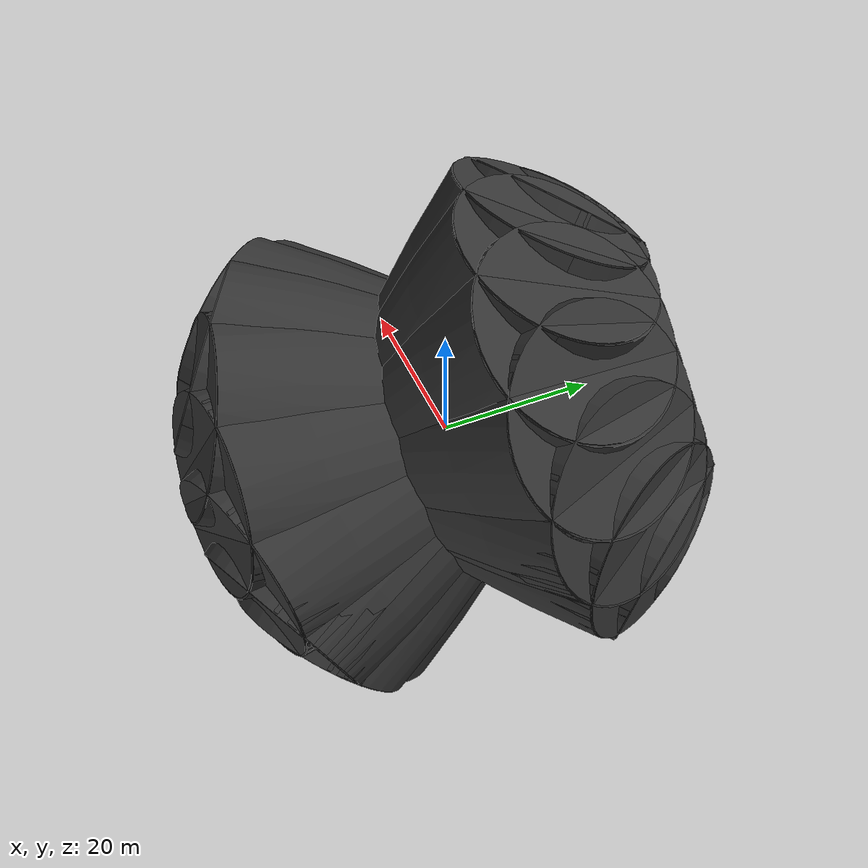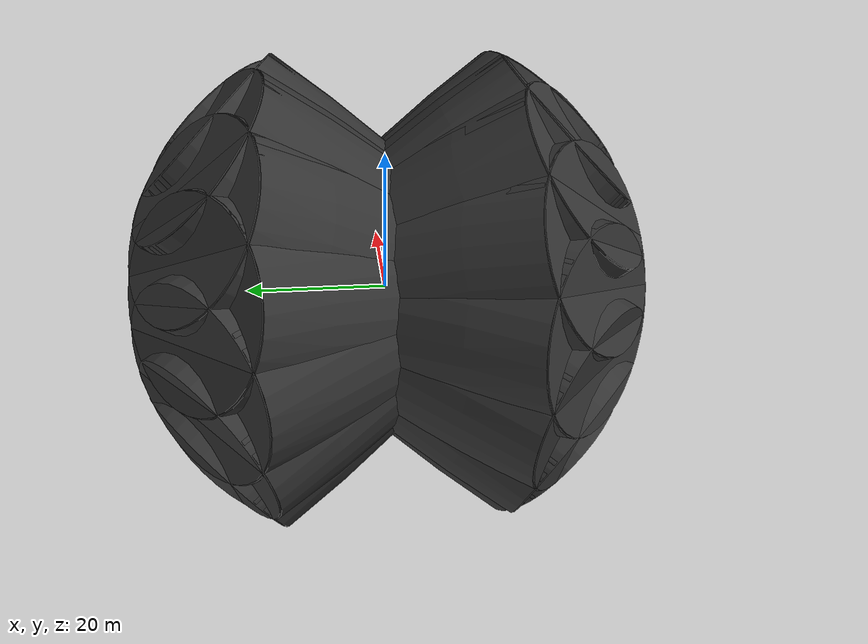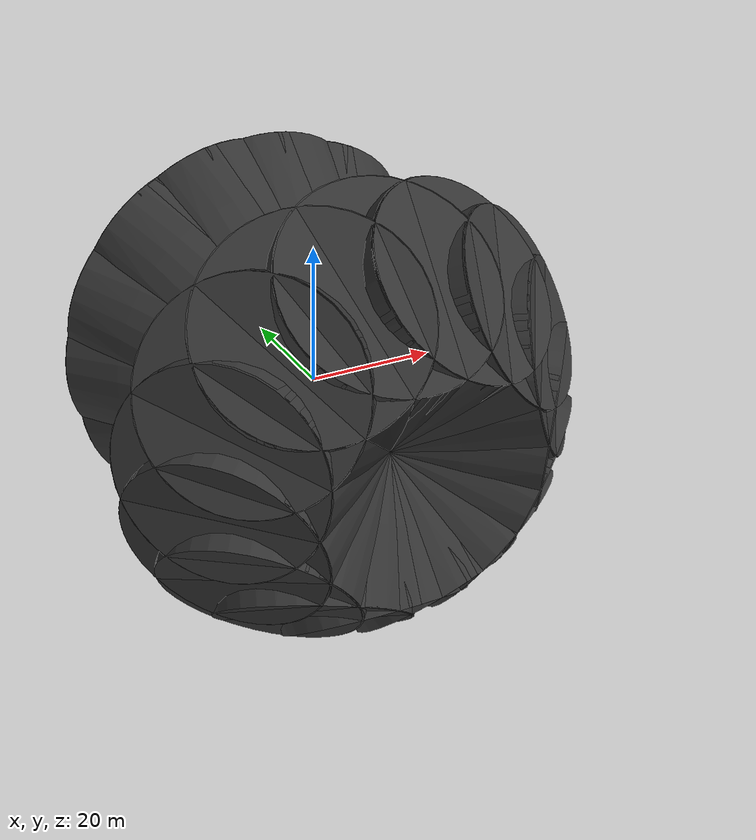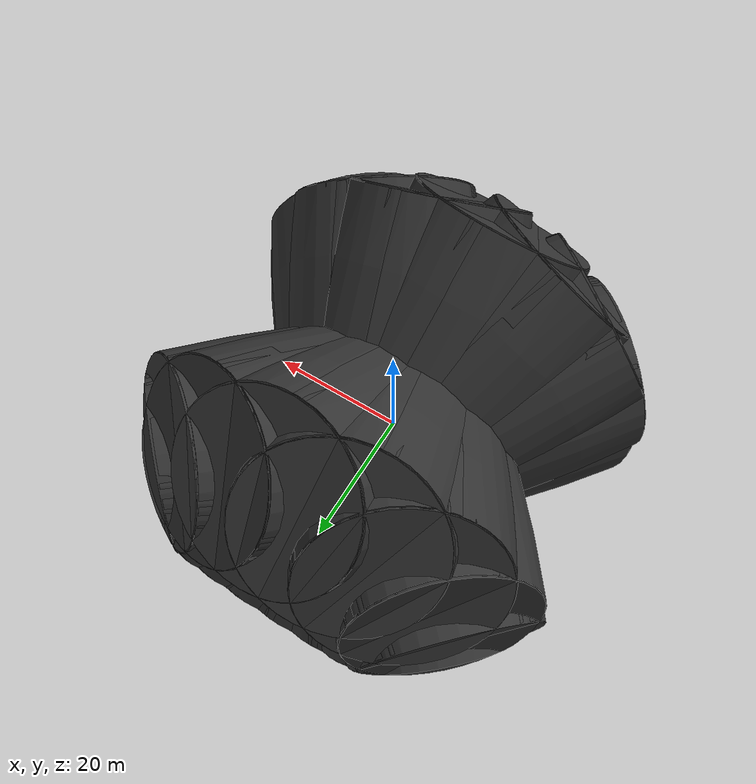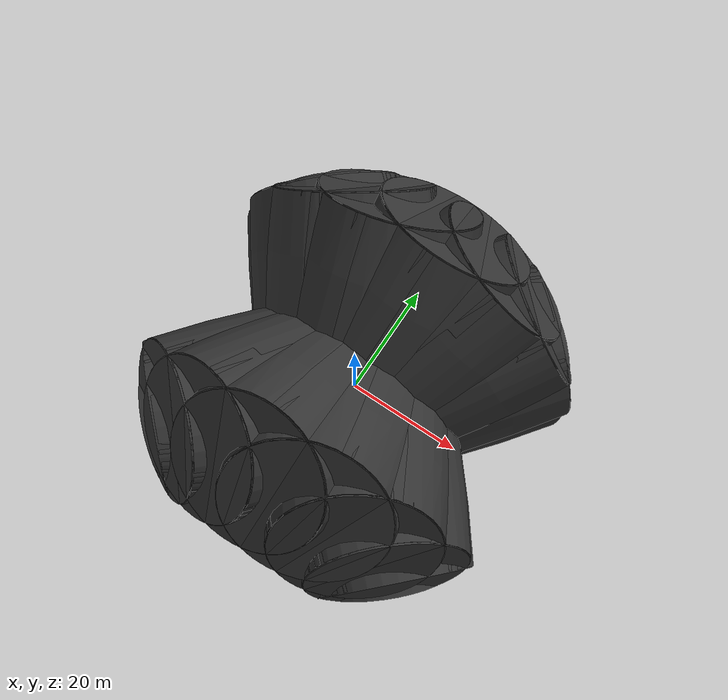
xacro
<?xml version="1.0" ?>
<robot name="amir_mecanum3" xmlns:xacro="http://www.ros.org/wiki/xacro">

  <!-- メカナムローバー URDF
       mecanum3.gazebo (gz_ros2_control-system) と
       mecanum3_ros2_control.xacro (MecanumSystem) を含む -->
  <xacro:include filename="$(find mecanumrover_description)/urdf/mecanum3.xacro"/>

  <!-- AMIR アーム リンク/ジョイント -->
  <xacro:include filename="$(find amir_description)/urdf/amir_for_rover.xacro"/>

  <!-- ローバーとアームの固定接続 -->
  <joint name="base_fixed" type="fixed">
    <origin xyz="0.0 0.0 0.413" rpy="0 0 0"/>
    <parent link="base_link"/>
    <child link="link0_1"/>
  </joint>

  <ros2_control name="AmirGazeboSystem" type="system">
    <hardware>
      <plugin>gz_ros2_control/GazeboSimSystem</plugin>
    </hardware>
    <joint name="Joint_1">
      <command_interface name="position">
        <param name="min">-2.96706</param>
        <param name="max">2.96706</param>
      </command_interface>
      <state_interface name="position">
        <param name="initial_value">0.0</param>
      </state_interface>
      <state_interface name="velocity"/>
    </joint>
    <joint name="Joint_2">
      <command_interface name="position">
        <param name="min">0.0</param>
        <param name="max">2.356194</param>
      </command_interface>
      <state_interface name="position">
        <param name="initial_value">0.0</param>
      </state_interface>
      <state_interface name="velocity"/>
    </joint>
    <joint name="Joint_3">
      <command_interface name="position">
        <param name="min">-2.792527</param>
        <param name="max">0.0</param>
      </command_interface>
      <state_interface name="position">
        <param name="initial_value">0.0</param>
      </state_interface>
      <state_interface name="velocity"/>
    </joint>
    <joint name="Joint_4">
      <command_interface name="position">
        <param name="min">-2.094395</param>
        <param name="max">1.308997</param>
      </command_interface>
      <state_interface name="position">
        <param name="initial_value">0.0</param>
      </state_interface>
      <state_interface name="velocity"/>
    </joint>
    <joint name="Joint_5">
      <command_interface name="position">
        <param name="min">-2.75762</param>
        <param name="max">2.75762</param>
      </command_interface>
      <state_interface name="position">
        <param name="initial_value">0.0</param>
      </state_interface>
      <state_interface name="velocity"/>
    </joint>
    <joint name="Gripper">
      <command_interface name="position">
        <param name="min">-1.047198</param>
        <param name="max">0.261799</param>
      </command_interface>
      <state_interface name="position">
        <param name="initial_value">0.0</param>
      </state_interface>
      <state_interface name="velocity"/>
    </joint>
    <joint name="left_inner_back_joint">
      <param name="mimic">Gripper</param>
      <param name="multiplier">1</param>
      <command_interface name="position"/>
      <state_interface name="position"/>
      <state_interface name="velocity"/>
    </joint>
    <joint name="right_outer_back_joint">
      <param name="mimic">Gripper</param>
      <param name="multiplier">1</param>
      <command_interface name="position"/>
      <state_interface name="position"/>
      <state_interface name="velocity"/>
    </joint>
    <joint name="left_outer_back_joint">
      <param name="mimic">Gripper</param>
      <param name="multiplier">1</param>
      <command_interface name="position"/>
      <state_interface name="position"/>
      <state_interface name="velocity"/>
    </joint>
    <joint name="right_inner_front_joint">
      <param name="mimic">Gripper</param>
      <param name="multiplier">1</param>
      <command_interface name="position"/>
      <state_interface name="position"/>
      <state_interface name="velocity"/>
    </joint>
    <joint name="left_inner_front_joint">
      <param name="mimic">Gripper</param>
      <param name="multiplier">1</param>
      <command_interface name="position"/>
      <state_interface name="position"/>
      <state_interface name="velocity"/>
    </joint>
  </ros2_control>

  <gazebo reference="link0_1"><collision><surface><friction><ode>
    <mu>1.4</mu><mu2>1.4</mu2>
  </ode></friction></surface></collision></gazebo>

  <gazebo reference="link1_1"><collision><surface><friction><ode>
    <mu>1.4</mu><mu2>1.4</mu2>
  </ode></friction></surface></collision></gazebo>

  <gazebo reference="link2_1"><collision><surface><friction><ode>
    <mu>1.4</mu><mu2>1.4</mu2>
  </ode></friction></surface></collision></gazebo>

  <gazebo reference="link3_1"><collision><surface><friction><ode>
    <mu>1.4</mu><mu2>1.4</mu2>
  </ode></friction></surface></collision></gazebo>

  <gazebo reference="link4_1"><collision><surface><friction><ode>
    <mu>1.4</mu><mu2>1.4</mu2>
  </ode></friction></surface></collision></gazebo>

  <gazebo reference="gripper_base_1"><collision><surface><friction><ode>
    <mu>1.4</mu><mu2>1.4</mu2>
  </ode></friction></surface></collision></gazebo>

  <gazebo reference="inner_link_left_1"><collision><surface><friction><ode>
    <mu>2.0</mu><mu2>2.0</mu2>
  </ode></friction></surface></collision></gazebo>

  <gazebo reference="inner_link_right_1"><collision><surface><friction><ode>
    <mu>2.0</mu><mu2>2.0</mu2>
  </ode></friction></surface></collision></gazebo>

  <gazebo reference="outer_link_left_1"><collision><surface><friction><ode>
    <mu>2.0</mu><mu2>2.0</mu2>
  </ode></friction></surface></collision></gazebo>

  <gazebo reference="outer_link_right_1"><collision><surface><friction><ode>
    <mu>2.0</mu><mu2>2.0</mu2>
  </ode></friction></surface></collision></gazebo>

  <!-- グリッパー指: 高摩擦 + 接触剛性 (把持面) -->
  <gazebo reference="finger_left_1">
    <collision>
      <surface>
        <friction>
          <ode>
            <mu>3.0</mu>
            <mu2>3.0</mu2>
          </ode>
        </friction>
        <contact>
          <ode>
            <kp>1e6</kp>
            <kd>1e3</kd>
            <max_vel>0.01</max_vel>
            <min_depth>0.001</min_depth>
          </ode>
        </contact>
      </surface>
    </collision>
  </gazebo>

  <gazebo reference="finger_right_1">
    <collision>
      <surface>
        <friction>
          <ode>
            <mu>3.0</mu>
            <mu2>3.0</mu2>
          </ode>
        </friction>
        <contact>
          <ode>
            <kp>1e6</kp>
            <kd>1e3</kd>
            <max_vel>0.01</max_vel>
            <min_depth>0.001</min_depth>
          </ode>
        </contact>
      </surface>
    </collision>
  </gazebo>

</robot>

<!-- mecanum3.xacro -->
<robot name="mecanum3" xmlns:xacro="http://www.ros.org/wiki/xacro">

  <xacro:include filename="$(find mecanumrover_description)/urdf/materials.xacro" />
  <xacro:include filename="$(find mecanumrover_description)/urdf/mecanum3.gazebo" />
  <xacro:include filename="$(find mecanumrover_description)/urdf/mecanum3_ros2_control.xacro" />

  <xacro:include filename="$(find vs_rover_options_description)/urdf/lrf/tg30_mecanum3.xacro" />

  <!-- Inertial macros -->
  <xacro:macro name="cylinder_inertial" params="mass radius length">
    <mass value="${mass}"/>
    <inertia
      ixx="${((radius*radius)/4 + (length*length)/12)*mass}"
      ixy="0" ixz="0"
      iyy="${((radius*radius)/4 + (length*length)/12)*mass}"
      iyz="0"
      izz="${(mass*radius*radius)/2}" />
  </xacro:macro>

  <!-- Barrel (roller) macros -->
  <xacro:macro name="barrel_rl" params="prefix parent dir rot">
    <joint name="${prefix}_joint" type="continuous">
      <parent link="${parent}"/>
      <child  link="${prefix}_link"/>
      <origin
        xyz="${0.0666389*cos(radians(dir))} ${0.0666389*sin(radians(dir))} 0"
        rpy="${pi/4*rot} 0 ${radians(dir)}"/>
      <axis xyz="0 0 1"/>
      <dynamics damping="0.001" friction="0.0"/>
    </joint>
    <link name="${prefix}_link">
      <visual>
        <geometry>
          <mesh filename="package://mecanumrover_description/meshes/mecanum3/mecanum_barrel.stl"/>
        </geometry>
        <material name="dark_grey"/>
      </visual>
      <collision>
        <geometry>
          <mesh filename="package://mecanumrover_description/meshes/mecanum3/mecanum_barrel.stl"/>
        </geometry>
      </collision>
      <inertial>
        <xacro:cylinder_inertial
          mass="0.01225"
          radius="0.00956"
          length="0.0381"/>
      </inertial>
    </link>
  </xacro:macro>

  <xacro:macro name="barrels_rl" params="prefix parent rot">
    <xacro:barrel_rl prefix="${prefix}_0"  parent="${parent}" dir="0"   rot="${rot}"/>
    <xacro:barrel_rl prefix="${prefix}_1"  parent="${parent}" dir="24"  rot="${rot}"/>
    <xacro:barrel_rl prefix="${prefix}_2"  parent="${parent}" dir="48"  rot="${rot}"/>
    <xacro:barrel_rl prefix="${prefix}_3"  parent="${parent}" dir="72"  rot="${rot}"/>
    <xacro:barrel_rl prefix="${prefix}_4"  parent="${parent}" dir="96"  rot="${rot}"/>
    <xacro:barrel_rl prefix="${prefix}_5"  parent="${parent}" dir="120" rot="${rot}"/>
    <xacro:barrel_rl prefix="${prefix}_6"  parent="${parent}" dir="144" rot="${rot}"/>
    <xacro:barrel_rl prefix="${prefix}_7"  parent="${parent}" dir="168" rot="${rot}"/>
    <xacro:barrel_rl prefix="${prefix}_8"  parent="${parent}" dir="192" rot="${rot}"/>
    <xacro:barrel_rl prefix="${prefix}_9"  parent="${parent}" dir="216" rot="${rot}"/>
    <xacro:barrel_rl prefix="${prefix}_10" parent="${parent}" dir="240" rot="${rot}"/>
    <xacro:barrel_rl prefix="${prefix}_11" parent="${parent}" dir="264" rot="${rot}"/>
    <xacro:barrel_rl prefix="${prefix}_12" parent="${parent}" dir="288" rot="${rot}"/>
    <xacro:barrel_rl prefix="${prefix}_13" parent="${parent}" dir="312" rot="${rot}"/>
    <xacro:barrel_rl prefix="${prefix}_14" parent="${parent}" dir="336" rot="${rot}"/>
  </xacro:macro>

  <xacro:macro name="attach_mecanum_rollers" params="wheel_prefix wheel_link rot">
    <xacro:barrels_rl
      prefix="${wheel_prefix}_barrel"
      parent="${wheel_link}"
      rot="${rot}"/>
  </xacro:macro>

  <!-- Arm link macro -->
  <xacro:macro name="mecanum_arm_link" params="name">
    <link name="${name}">
      <inertial>
        <origin xyz="0.001000 -0.054014 1.236051e-21"/>
        <mass value="0.5"/>
        <inertia ixx="7.442105e-04" iyy="2.141603e-04" izz="5.341336e-04" ixy="-4.944204e-21" ixz="1.236051e-21" iyz="1.089631e-04"/>
      </inertial>
      <visual>
        <geometry>
          <mesh filename="package://mecanumrover_description/meshes/mecanum3/arms.stl"
                scale="0.001 0.001 0.001"/>
        </geometry>
        <material name="silver"/>
      </visual>
      <collision>
        <geometry>
          <mesh filename="package://mecanumrover_description/meshes/mecanum3/arms.stl"
                scale="0.001 0.001 0.001"/>
        </geometry>
      </collision>
    </link>
  </xacro:macro>

  <!-- Wheel link macros
       Collision uses the actual STL mesh so barrel rollers are the outermost
       contact geometry (no separate cylinder approximation needed). -->
  <xacro:macro name="mecanum_wheel_link" params="name">
    <link name="${name}">
      <inertial>
        <origin xyz="0 0 0"/>
        <mass value="0.88"/>
        <inertia ixx="7.666816e-04" iyy="7.666974e-04" izz="8.946765e-04" ixy="2.614197e-11" ixz="1.015151e-09" iyz="-2.439097e-09"/>
      </inertial>
      <visual>
        <geometry>
          <mesh filename="package://mecanumrover_description/meshes/mecanum3/mecanum_wheel.stl"
                scale="0.001 0.001 0.001"/>
        </geometry>
        <material name="silver"/>
      </visual>
      <collision>
        <geometry>
          <mesh filename="package://mecanumrover_description/meshes/mecanum3/mecanum_wheel.stl"
                scale="0.001 0.001 0.001"/>
        </geometry>
      </collision>
    </link>
  </xacro:macro>

  <xacro:macro name="mecanum_wheel_rev_link" params="name">
    <link name="${name}">
      <inertial>
        <origin xyz="0.000657 0 0.007742"/>
        <mass value="0.88"/>
        <inertia ixx="7.655818e-04" iyy="7.655769e-04" izz="8.900386e-04" ixy="-6.106217e-09" ixz="1.064093e-09" iyz="-2.991811e-09"/>
      </inertial>
      <visual>
        <geometry>
          <mesh filename="package://mecanumrover_description/meshes/mecanum3/mecanum_wheel_rev.stl"
                scale="0.001 0.001 0.001"/>
        </geometry>
        <material name="silver"/>
      </visual>
      <collision>
        <geometry>
          <mesh filename="package://mecanumrover_description/meshes/mecanum3/mecanum_wheel_rev.stl"
                scale="0.001 0.001 0.001"/>
        </geometry>
      </collision>
    </link>
  </xacro:macro>

  <!-- Wheel joint macro -->
  <xacro:macro name="mecanum_wheel_joint" params="name parent child xyz rpy axis_z">
    <joint name="${name}" type="continuous">
      <parent link="${parent}"/>
      <child link="${child}"/>
      <origin xyz="${xyz}" rpy="${rpy}"/>
      <axis xyz="0 0 ${axis_z}"/>
      <limit effort="2500.0" velocity="20.0"/>
      <dynamics damping="0.1" friction="0.0"/>
    </joint>
  </xacro:macro>

  <!-- Base -->
  <link name="base_footprint"/>

  <joint name="base_joint" type="fixed">
    <parent link="base_footprint"/>
    <child link="base_link"/>
    <origin xyz="0 0 0" rpy="0 0 -1.5708"/>
  </joint>

  <link name="base_link">
    <inertial>
      <origin xyz="0.000129 -0.001817 0.110883"/>
      <mass value="20"/>
      <inertia ixx="1.346868e-01" iyy="4.468661e-02" izz="1.499091e-01" ixy="3.076527e-04" ixz="-2.931603e-05" iyz="2.763693e-05"/>
    </inertial>
    <visual>
      <geometry>
        <mesh filename="package://mecanumrover_description/meshes/mecanum3/base_link.stl"
              scale="0.001 0.001 0.001"/>
      </geometry>
      <material name="silver"/>
    </visual>
    <collision>
      <geometry>
        <mesh filename="package://mecanumrover_description/meshes/mecanum3/base_link.stl"
              scale="0.001 0.001 0.001"/>
      </geometry>
    </collision>
  </link>

  <!-- Arms -->
  <xacro:mecanum_arm_link name="front_left_arm"/>
  <xacro:mecanum_arm_link name="front_right_arm"/>
  <xacro:mecanum_arm_link name="back_left_arm"/>
  <xacro:mecanum_arm_link name="back_right_arm"/>

  <!-- Suspension joints (fixed: eliminates oscillation that caused tipping) -->
  <joint name="front_left_suspension_joint" type="fixed">
    <parent link="base_link"/>
    <child link="front_left_arm"/>
    <origin xyz="-0.085 0.020 0.076" rpy="0 0 ${radians(180)}"/>
  </joint>

  <joint name="front_right_suspension_joint" type="fixed">
    <parent link="base_link"/>
    <child link="front_right_arm"/>
    <origin xyz="0.085 0.020 0.076" rpy="0 0 ${radians(180)}"/>
  </joint>

  <joint name="back_left_suspension_joint" type="fixed">
    <parent link="base_link"/>
    <child link="back_left_arm"/>
    <origin xyz="-0.085 -0.020 0.076" rpy="0 0 0"/>
  </joint>

  <joint name="back_right_suspension_joint" type="fixed">
    <parent link="base_link"/>
    <child link="back_right_arm"/>
    <origin xyz="0.085 -0.020 0.076" rpy="0 0 0"/>
  </joint>

  <!-- Wheels -->
  <xacro:mecanum_wheel_rev_link name="front_left_wheel_1"/>
  <xacro:mecanum_wheel_link     name="front_right_wheel_1"/>
  <xacro:mecanum_wheel_link     name="back_left_wheel_1"/>
  <xacro:mecanum_wheel_rev_link name="back_right_wheel_1"/>

  <xacro:mecanum_wheel_joint
    name="front_left_joint"
    parent="front_left_arm"
    child="front_left_wheel_1"
    xyz="0.03 -0.100 0"
    rpy="0 ${radians(-270)} 0"
    axis_z="1"/>

  <xacro:mecanum_wheel_joint
    name="front_right_joint"
    parent="front_right_arm"
    child="front_right_wheel_1"
    xyz="-0.03 -0.100 0"
    rpy="0 ${radians(-90)} 0"
    axis_z="-1"/>

  <xacro:mecanum_wheel_joint
    name="back_left_joint"
    parent="back_left_arm"
    child="back_left_wheel_1"
    xyz="-0.03 -0.100 0"
    rpy="0 ${radians(270)} 0"
    axis_z="1"/>

  <xacro:mecanum_wheel_joint
    name="back_right_joint"
    parent="back_right_arm"
    child="back_right_wheel_1"
    xyz="0.03 -0.100 0"
    rpy="0 ${radians(90)} 0"
    axis_z="-1"/>

  <xacro:attach_mecanum_rollers
    wheel_prefix="front_left"
    wheel_link="front_left_wheel_1"
    rot="-1"/>

  <xacro:attach_mecanum_rollers
    wheel_prefix="front_right"
    wheel_link="front_right_wheel_1"
    rot="1"/>

  <xacro:attach_mecanum_rollers
    wheel_prefix="back_left"
    wheel_link="back_left_wheel_1"
    rot="1"/>

  <xacro:attach_mecanum_rollers
    wheel_prefix="back_right"
    wheel_link="back_right_wheel_1"
    rot="-1"/>

</robot>

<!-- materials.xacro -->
<robot name="materials" xmlns:xacro="http://www.ros.org/wiki/xacro">

  <material name="silver">
    <color rgba="0.800 0.800 0.800 1.000" />
  </material>

  <material name="dark_silver">
    <color rgba="0.400 0.400 0.400 1.000" />
  </material>

  <material name="dark_grey">
    <color rgba="0.200 0.200 0.200 1.000" />
  </material>

  <material name="black">
    <color rgba="0.100 0.100 0.100 1.000" />
  </material>

  <material name="cream">
    <color rgba="0.9725 0.8941 0.6941 1.0" />
  </material>

</robot>

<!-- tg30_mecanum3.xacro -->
<robot name="lrf_tg30_mecanum3" xmlns:xacro="http://ros.org/wiki/xacro">
  <xacro:include filename="$(find vs_rover_options_description)/urdf/lrf/tg30_mecanum3.gazebo" />

  <xacro:property name="tg30_lrf_front_x_offset" value="0.0" />
  <xacro:property name="tg30_lrf_front_y_offset" value="0.2000" />
  <xacro:property name="tg30_lrf_front_z_offset" value="0.1959" />
  <xacro:property name="tg30_lrf_back_x_offset" value="0.0" />
  <xacro:property name="tg30_lrf_back_y_offset" value="-0.2000" />
  <xacro:property name="tg30_lrf_back_z_offset" value="0.1959" />
  <xacro:property name="tg30_center_of_mass_x" value="-0.004299" />
  <xacro:property name="tg30_center_of_mass_y" value="-0.000337" />
  <xacro:property name="tg30_center_of_mass_z" value="-0.018037" />

  <joint name="front_lrf_joint" type="fixed">
    <parent link="base_link" />
    <child link="front_lrf_link" />
    <origin xyz="${tg30_lrf_front_x_offset} ${tg30_lrf_front_y_offset} ${tg30_lrf_front_z_offset}" rpy="0 0 ${pi/2}" />
  </joint>

  <link name="front_lrf_link">
    <inertial>
      <origin xyz="${tg30_center_of_mass_x} ${tg30_center_of_mass_y} ${tg30_center_of_mass_z}" rpy="0 0 0" />
      <mass value="0.200" />
      <inertia ixx="0.0001205" iyy="0.0001561" izz="0.0001977"
        ixy="0.00" iyz="0.00"
        ixz="0.00" />
    </inertial>
    <visual>
      <origin xyz="0 0 0" rpy="0 0 0" />
      <geometry>
        <mesh filename="package://vs_rover_options_description/meshes/lrf/tg30.stl" scale="0.001 0.001 0.001" />
      </geometry>
      <material name="black" />
    </visual>
    <collision>
      <origin xyz="0 0 0" rpy="0 0 0" />
      <geometry>
        <mesh filename="package://vs_rover_options_description/meshes/lrf/tg30.stl" scale="0.001 0.001 0.001" />
      </geometry>
    </collision>
  </link>

  <joint name="back_lrf_joint" type="fixed">
    <parent link="base_link" />
    <child link="back_lrf_link" />
    <origin xyz="${tg30_lrf_back_x_offset} ${tg30_lrf_back_y_offset} ${tg30_lrf_back_z_offset}" rpy="0 0 ${-pi/2}" />
  </joint>

  <link name="back_lrf_link">
    <inertial>
      <origin xyz="${tg30_center_of_mass_x} ${tg30_center_of_mass_y} ${tg30_center_of_mass_z}" rpy="0 0 0" />
      <mass value="0.200" />
      <inertia ixx="0.0001205" iyy="0.0001561" izz="0.0001977"
        ixy="0.00" iyz="0.00"
        ixz="0.00" />
    </inertial>
    <visual>
      <origin xyz="0 0 0" rpy="0 0 0" />
      <geometry>
        <mesh filename="package://vs_rover_options_description/meshes/lrf/tg30.stl" scale="0.001 0.001 0.001" />
      </geometry>
      <material name="black" />
    </visual>
    <collision>
      <origin xyz="0 0 0" rpy="0 0 0" />
      <geometry>
        <mesh filename="package://vs_rover_options_description/meshes/lrf/tg30.stl" scale="0.001 0.001 0.001" />
      </geometry>
    </collision>
  </link>

</robot>

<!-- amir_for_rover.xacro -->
<robot name="amir_for_rover" xmlns:xacro="http://www.ros.org/wiki/xacro">

<xacro:include filename="$(find amir_description)/urdf/materials.xacro" />
<xacro:include filename="$(find amir_description)/urdf/amir.trans" />

<link name="link0_1">
  <inertial>
    <origin xyz="0.0 -0.018171 -0.164351" rpy="0 0 0"/>
    <mass value="2.37148"/>
    <inertia ixx="0.01020"
             iyy="0.008745"
             izz="0.008637"
             ixy="-0.000000291275"
             iyz="-0.0001135"
             ixz="0.000000428733"/>
  </inertial>
  <visual>
    <origin xyz="0 0 0" rpy="0 0 0"/>
    <geometry>
      <mesh filename="package://amir_description/meshes/base_link.stl" scale="0.001 0.001 0.001"/>
    </geometry>
    <material name="silver-amir"/>
  </visual>
  <collision>
    <origin xyz="0 0 0" rpy="0 0 0"/>
    <geometry>
      <mesh filename="package://amir_description/meshes/base_link.stl" scale="0.001 0.001 0.001"/>
    </geometry>
  </collision>
</link>

<link name="link1_1">
  <inertial>
    <origin xyz="0.00 -0.015481739081542548 0.052015680869348734" rpy="0 0 0"/>
    <mass value="1.530171"/>
    <inertia ixx="0.003518"
             iyy="0.003654"
             izz="0.004561"
             ixy="0.0002342"
             iyz="0.00002134302"
             ixz="-0.000060488629"/>
  </inertial>
  <visual>
    <origin xyz="0.00 0.001523 0.097" rpy="0 0 0"/>
    <geometry>
      <mesh filename="package://amir_description/meshes/link1_1.stl" scale="0.001 0.001 0.001"/>
    </geometry>
    <material name="silver-amir"/>
  </visual>
  <collision>
    <origin xyz="0.00 0.001523 0.097" rpy="0 0 0"/>
    <geometry>
      <mesh filename="package://amir_description/meshes/link1_1.stl" scale="0.001 0.001 0.001"/>
    </geometry>
  </collision>
</link>

<link name="link2_1">
  <inertial>
    <origin xyz="0.00 0.13301271963728503 0.014415028610505691" rpy="0 0 0"/>
    <mass value="1.863224"/>
    <inertia ixx="0.01781"
             iyy="0.003563"
             izz="0.02037"
             ixy="0.002226"
             iyz="-0.0008328"
             ixz="0.0002878"/>
  </inertial>
  <visual>
    <origin xyz="0.0 0.001523 -0.0" rpy="0 0 0"/>
    <geometry>
      <mesh filename="package://amir_description/meshes/link2_1.stl" scale="0.001 0.001 0.001"/>
    </geometry>
    <material name="silver-amir"/>
  </visual>
  <collision>
    <origin xyz="0.0 0.001523 -0.0" rpy="0 0 0"/>
    <geometry>
      <mesh filename="package://amir_description/meshes/link2_1.stl" scale="0.001 0.001 0.001"/>
    </geometry>
  </collision>
</link>

<link name="link3_1">
  <inertial>
    <origin xyz="-0.0 0.11541444998364736 0.013649097933998836" rpy="0 0 0"/>
    <mass value="0.904315"/>
    <inertia ixx="0.01374"
             iyy="0.0009585"
             izz="0.01392"
             ixy="0.0004506"
             iyz="-0.0007046"
             ixz="0.000064200508"/>
  </inertial>
  <visual>
    <origin xyz="-0.0 -0.308477 0.0" rpy="0 0 0"/>
    <geometry>
      <mesh filename="package://amir_description/meshes/link3_1.stl" scale="0.001 0.001 0.001"/>
    </geometry>
    <material name="silver-amir"/>
  </visual>
  <collision>
    <origin xyz="-0.0 -0.308477 0.0" rpy="0 0 0"/>
    <geometry>
      <mesh filename="package://amir_description/meshes/link3_1.stl" scale="0.001 0.001 0.001"/>
    </geometry>
  </collision>
</link>

<link name="link4_1">
  <inertial>
    <origin xyz="0.0 0.002871377179418988 -2.4706069597529916e-10" rpy="0 0 0"/>
    <mass value="0.261183"/>
    <inertia ixx="0.000153"
             iyy="0.000144"
             izz="0.0001626"
             ixy="0.000007504862"
             iyz="-0.000000008483"
             ixz="-0.000000007056"/>
  </inertial>
  <visual>
    <origin xyz="0.0 -0.618477 -0.0" rpy="0 0 0"/>
    <geometry>
      <mesh filename="package://amir_description/meshes/link4_1.stl" scale="0.001 0.001 0.001"/>
    </geometry>
    <material name="silver-amir"/>
  </visual>
  <collision>
    <origin xyz="0.0 -0.618477 -0.0" rpy="0 0 0"/>
    <geometry>
      <mesh filename="package://amir_description/meshes/link4_1.stl" scale="0.001 0.001 0.001"/>
    </geometry>
  </collision>
</link>

<!-- add tool center point link for easier visualization -->
<link name="tcp_link">
  <visual>
    <geometry>
      <box size="0.01 0.01 0.01"/>
    </geometry>
    <material name="red">
      <color rgba="1.0 0.0 0.0 0.6"/>
    </material>
  </visual>
</link>

<joint name="tcp_fixed" type="fixed">
  <origin xyz="0.0 0.0795 0.0" rpy="0 0 0"/>
  <parent link="gripper_base_1"/>
  <child link="tcp_link"/>
</joint>

<link name="gripper_base_1">
  <inertial>
    <origin xyz="0.0 0.01128514374633649 -0.004836003736858561" rpy="0 0 0"/>
    <mass value="0.130337"/>
    <inertia ixx="0.00008551164"
             iyy="0.0001216"
             izz="0.000059771966"
             ixy="-0.000003161031"
             iyz="0.000001110492"
             ixz="-0.000003519581"/>
  </inertial>
  <visual>
    <origin xyz="0.0 -0.658977 -0.0" rpy="0 0 0"/>
    <geometry>
      <mesh filename="package://amir_description/meshes/gripper_base_1.stl" scale="0.001 0.001 0.001"/>
    </geometry>
    <material name="silver-amir"/>
  </visual>
  <collision>
    <origin xyz="0.0 -0.658977 -0.0" rpy="0 0 0"/>
    <geometry>
      <mesh filename="package://amir_description/meshes/gripper_base_1.stl" scale="0.001 0.001 0.001"/>
    </geometry>
  </collision>
</link>

<link name="inner_link_left_1">
  <inertial>
    <origin xyz="0.004775263006022466 0.014691054356398392 0.0" rpy="0 0 0"/>
    <mass value="0.010214"/>
    <inertia ixx="0.000007990586"
             iyy="0.000005973968"
             izz="0.000002702176"
             ixy="-0.000000446816"
             iyz="0.0000"
             ixz="-0.00000"/>
  </inertial>
  <visual>
    <origin xyz="0.018 -0.679499 -0.0" rpy="0 0 0"/>
    <geometry>
      <mesh filename="package://amir_description/meshes/inner_link_left_1.stl" scale="0.001 0.001 0.001"/>
    </geometry>
    <material name="silver-amir"/>
  </visual>
  <collision>
    <origin xyz="0.018 -0.679499 -0.0" rpy="0 0 0"/>
    <geometry>
      <mesh filename="package://amir_description/meshes/inner_link_left_1.stl" scale="0.001 0.001 0.001"/>
    </geometry>
  </collision>
</link>

<link name="outer_link_right_1">
  <inertial>
    <origin xyz="0.0029741808490290345 0.020000417105897617 0.0" rpy="0 0 0"/>
    <mass value="0.015216"/>
    <inertia ixx="0.000009064719"
             iyy="0.000006207691"
             izz="0.000003674706"
             ixy="0.000000861905"
             iyz="-0.0"
             ixz="0.0"/>
  </inertial>
  <visual>
    <origin xyz="-0.038 -0.679499 -0.0" rpy="0 0 0"/>
    <geometry>
      <mesh filename="package://amir_description/meshes/outer_link_right_1.stl" scale="0.001 0.001 0.001"/>
    </geometry>
    <material name="silver-amir"/>
  </visual>
  <collision>
    <origin xyz="-0.038 -0.679499 -0.0" rpy="0 0 0"/>
    <geometry>
      <mesh filename="package://amir_description/meshes/outer_link_right_1.stl" scale="0.001 0.001 0.001"/>
    </geometry>
  </collision>
</link>

<link name="outer_link_left_1">
  <inertial>
    <origin xyz="-0.002974180849028861 0.020000417105899837 0.0" rpy="0 0 0"/>
    <mass value="0.015216"/>
    <inertia ixx="0.000009073869"
             iyy="0.000006198542"
             izz="0.000003674706"
             ixy="-0.000000846555"
             iyz="0.00000"
             ixz="0.00000"/>
  </inertial>
  <visual>
    <origin xyz="0.038 -0.679499 -0.0" rpy="0 0 0"/>
    <geometry>
      <mesh filename="package://amir_description/meshes/outer_link_left_1.stl" scale="0.001 0.001 0.001"/>
    </geometry>
    <material name="silver-amir"/>
  </visual>
  <collision>
    <origin xyz="0.038 -0.679499 -0.0" rpy="0 0 0"/>
    <geometry>
      <mesh filename="package://amir_description/meshes/outer_link_left_1.stl" scale="0.001 0.001 0.001"/>
    </geometry>
  </collision>
</link>

<!-- NOTE: urdf doesnt support kinematic closed loop,
so we need to left one on the joints open -->

<!-- use this when using inner link -->
<link name="finger_right_1">
  <inertial>
    <origin xyz="0.002489444086893569 0.012411313372935995 0.0" rpy="0 0 0"/>
    <mass value="0.022898"/>
    <inertia ixx="0.000017128826"
             iyy="0.000011930401"
             izz="0.000008715513"
             ixy="0.000001953953"
             iyz="0.00"
             ixz="-0.00"/>
  </inertial>
  <visual>
    <origin xyz="-0.018 -0.719499 -0.0" rpy="0 0 0"/>
    <geometry>
      <mesh filename="package://amir_description/meshes/finger_right_1.stl" scale="0.001 0.001 0.001"/>
    </geometry>
    <material name="silver-amir"/>
  </visual>
  <collision>
    <origin xyz="-0.018 -0.719499 -0.0" rpy="0 0 0"/>
    <geometry>
      <mesh filename="package://amir_description/meshes/finger_right_1.stl" scale="0.001 0.001 0.001"/>
    </geometry>
  </collision>
</link>

<link name="finger_left_1">
  <inertial>
    <origin xyz="-0.0024894440868974757 0.012411313372938326 0.0" rpy="0 0 0"/>
    <mass value="0.022898"/>
    <inertia ixx="0.000017128826"
             iyy="0.000011930401"
             izz="0.000008715513"
             ixy="-0.000001953953"
             iyz="0.00"
             ixz="-0.00"/>
  </inertial>
  <visual>
    <origin xyz="0.018 -0.719499 -0.0" rpy="0 0 0"/>
    <geometry>
      <mesh filename="package://amir_description/meshes/finger_left_1.stl" scale="0.001 0.001 0.001"/>
    </geometry>
    <material name="silver-amir"/>
  </visual>
  <collision>
    <origin xyz="0.018 -0.719499 -0.0" rpy="0 0 0"/>
    <geometry>
      <mesh filename="package://amir_description/meshes/finger_left_1.stl" scale="0.001 0.001 0.001"/>
    </geometry>
  </collision>
</link>
<!-- end of inner link -->

<!-- use this when using outer link -->
<!-- end of outer link -->

<link name="inner_link_right_1">
  <inertial>
    <origin xyz="-0.003238561697949489 0.01183851365994859 0.0" rpy="0 0 0"/>
    <mass value="0.009152"/>
    <inertia ixx="0.000006905758"
             iyy="0.000005170951"
             izz="0.000002372537"
             ixy="0.000000349609"
             iyz="0.000000273496"
             ixz="-0.000000039247"/>
  </inertial>
  <visual>
    <origin xyz="-0.018 -0.679499 -0.0" rpy="0 0 0"/>
    <geometry>
      <mesh filename="package://amir_description/meshes/inner_link_right_1.stl" scale="0.001 0.001 0.001"/>
    </geometry>
    <material name="silver-amir"/>
  </visual>
  <collision>
    <origin xyz="-0.018 -0.679499 -0.0" rpy="0 0 0"/>
    <geometry>
      <mesh filename="package://amir_description/meshes/inner_link_right_1.stl" scale="0.001 0.001 0.001"/>
    </geometry>
  </collision>
</link>

<joint name="Joint_1" type="revolute">
  <origin xyz="-0.0 -0.001523 -0.097" rpy="0 0 0"/>
  <parent link="link0_1"/>
  <child link="link1_1"/>
  <axis xyz="0.0 0.0 1.0"/>
  <limit upper="2.96706" lower="-2.96706" effort="33" velocity="1"/>
  <!-- Increased damping to reduce arm reaction forces transmitted to the mobile base -->
  <dynamics damping="3.0" friction="0.3" />
</joint>

<joint name="Joint_2" type="revolute">
  <origin xyz="-0.0 0.0 0.097" rpy="0 0 0"/>
  <parent link="link1_1"/>
  <child link="link2_1"/>
  <axis xyz="1.0 0.0 0.0"/>
  <limit upper="2.356194" lower="0" effort="22" velocity="1"/>
  <dynamics damping="3.0" friction="0.3" />
</joint>

<joint name="Joint_3" type="revolute">
  <origin xyz="0.0 0.31 -0.0" rpy="0 0 0"/>
  <parent link="link2_1"/>
  <child link="link3_1"/>
  <axis xyz="1.0 0.0 0.0"/>
  <limit upper="0.0" lower="-2.792527" effort="26" velocity="1"/>
  <dynamics damping="3.0" friction="0.3" />
</joint>

<joint name="Joint_4" type="revolute">
  <origin xyz="-0.0 0.31 0.0" rpy="0 0 0"/>
  <parent link="link3_1"/>
  <child link="link4_1"/>
  <axis xyz="1.0 0.0 0.0"/>
  <limit lower="-2.094395" upper="1.308997" effort="1.3" velocity="1"/>
  <dynamics damping="1.5" friction="0.1" />
</joint>

<joint name="Joint_5" type="revolute">
  <origin xyz="0.0 0.0405 0.0" rpy="0 0 0"/>
  <parent link="link4_1"/>
  <child link="gripper_base_1"/>
  <axis xyz="0.0 1.0 0.0"/>
  <limit lower="-2.75762" upper="2.75762" effort="0.4" velocity="2"/>
  <dynamics damping="1.5" friction="0.1" />
</joint>

<joint name="Gripper" type="revolute">
  <origin xyz="0.018367 0.020522 0.0" rpy="0 0 0"/>
  <parent link="gripper_base_1"/>
  <child link="inner_link_right_1"/>
  <axis xyz="0.0 0.0 1.0"/>
  <limit lower="-1.047198" upper="0.261799" effort="0.4" velocity="2"/>
</joint>

<joint name="left_inner_back_joint" type="revolute">
  <origin xyz="-0.017633 0.020522 0.0" rpy="0 0 0"/>
  <parent link="gripper_base_1"/>
  <child link="inner_link_left_1"/>
  <axis xyz="0.0 0.0 -1.0"/>
  <limit lower="-1.047198" upper="0.261799" effort="0.4" velocity="2"/>
  <dynamics damping="0.1" friction="0.05"/>
  <mimic joint="Gripper" multiplier="1" offset="0" />
</joint>

<joint name="right_outer_back_joint" type="revolute">
  <origin xyz="0.038367 0.020522 0.0" rpy="0 0 0"/>
  <parent link="gripper_base_1"/>
  <child link="outer_link_right_1"/>
  <axis xyz="0.0 0.0 1.0"/>
  <limit lower="-1.047198" upper="0.261799" effort="0.4" velocity="2"/>
  <dynamics damping="0.1" friction="0.05"/>
  <mimic joint="Gripper" multiplier="1" offset="0" />
</joint>

<joint name="left_outer_back_joint" type="revolute">
  <origin xyz="-0.037633 0.020522 0.0" rpy="0 0 0"/>
  <parent link="gripper_base_1"/>
  <child link="outer_link_left_1"/>
  <axis xyz="0.0 0.0 -1.0"/>
  <limit lower="-1.047198" upper="0.261799" effort="0.4" velocity="2"/>
  <dynamics damping="0.1" friction="0.05"/>
  <mimic joint="Gripper" multiplier="1" offset="0" />
</joint>

<!-- use this when using inner joint -->
<joint name="right_inner_front_joint" type="revolute">
  <origin xyz="0.0 0.04 0.0" rpy="0 0 0"/>
  <parent link="inner_link_right_1"/>
  <child link="finger_right_1"/>
  <axis xyz="0.0 0.0 -1.0"/>
  <limit lower="-1.047198" upper="0.261799" effort="0.4" velocity="2"/>
  <dynamics damping="0.1" friction="0.05"/>
  <mimic joint="Gripper" multiplier="1" offset="0" />
</joint>

<joint name="left_inner_front_joint" type="revolute">
  <origin xyz="-0.0 0.04 0.0" rpy="0 0 0"/>
  <parent link="inner_link_left_1"/>
  <child link="finger_left_1"/>
  <axis xyz="0.0 0.0 1.0"/>
  <limit lower="-1.047198" upper="0.261799" effort="0.4" velocity="2"/>
  <dynamics damping="0.1" friction="0.05"/>
  <mimic joint="Gripper" multiplier="1" offset="0" />
</joint>
<!-- end of inner joint -->

<!-- use this when using outer joint -->
<!-- end of outer joint -->

</robot>
